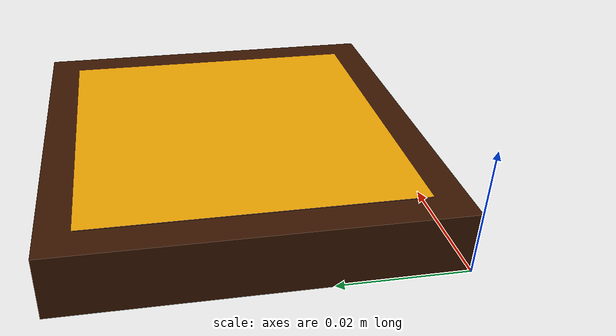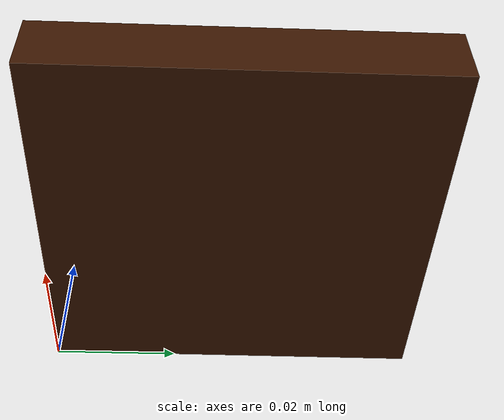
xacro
<?xml version="1.0"?>
<robot xmlns:xacro="http://www.ros.org/wiki/xacro" name="ar_2">
  <link name="ar_2__link">

    <visual>
      <origin rpy="0 0 0" xyz="0 0 0"/>
      <geometry>
        <mesh filename="package://jig_description/meshes/ar_2.dae"/>
      </geometry>
    </visual>

    <collision>
       <origin rpy="0 0 0" xyz="0 0 0"/>
      <geometry>
        <mesh filename="package://jig_description/meshes/ar_2.dae"/>
      </geometry>
    </collision>

    <inertial>
      <mass value="1" />
      <inertia ixx="0.01" ixy="-0.00" ixz="0.0" iyy="0.01" iyz="0.0" izz="0.01" />
    </inertial>

  </link>

</robot>
